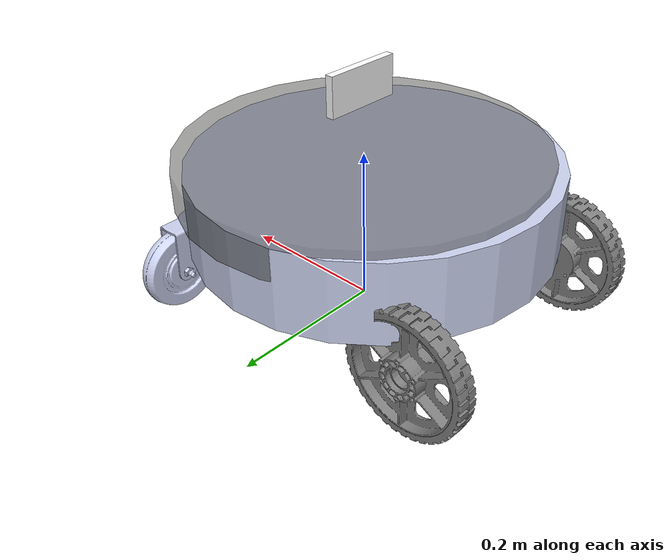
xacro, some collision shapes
<?xml version="1.0"?>
<robot name="hamr" xmlns:xacro="http://www.ros.org/wiki/xacro">

    <xacro:include filename="common_properties.xacro" />
    <xacro:include filename="hamr_sw_v_simplified.xacro" />
    <xacro:include filename="hamr_gazebo.xacro" />
    <xacro:include filename="camera.xacro" />

</robot>

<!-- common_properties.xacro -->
<robot xmlns:xacro="http://www.ros.org/wiki/xacro">

    <material name="black">
        <color rgba="1.0 1.0 1.0 1" /> <!-- r g b alpha -->
    </material>

    <material name="grey">
        <color rgba="0.5 0.5 0.5 1" /> <!-- r g b alpha -->
    </material>

    <material name="white">
        <color rgba="0.0 0.0 0.0 1" /> <!-- r g b alpha -->
    </material>

    <xacro:macro name="box_inertia" params="m x y z o_xyz o_rpy">
        <inertial>
            <mass value="${m}" />
            <origin xyz="${o_xyz}" rpy="${o_rpy}" />
            <inertia ixx="${(m/12) * (y*y + z*z)}" ixy="0" ixz="0"
                     iyy="${(m/12) * (x*x + z*z)}" iyz="0"
                     izz="${(m/12) * (y*y + x*x)}" />
        </inertial>
    </xacro:macro>

    <xacro:macro name="cylinder_inertia" params="m r h o_xyz o_rpy">
        <inertial>
            <mass value="${m}" />
            <origin xyz="${o_xyz}" rpy="${o_rpy}" />
            <inertia ixx="${(m/12) * (3*r*r + h*h)}" ixy="0" ixz="0"
                     iyy="${(m/12) * (3*r*r + h*h)}" iyz="0"
                     izz="${(m/2) * (r*r)}" />
        </inertial>
    </xacro:macro>

    <xacro:macro name="sphere_inertia" params="m r o_xyz o_rpy">
        <inertial>
            <mass value="${m}" />
            <origin xyz="${o_xyz}" rpy="${o_rpy}" />
            <inertia ixx="${(2/5) * m * r*r}" ixy="0" ixz="0"
                     iyy="${(2/5) * m * r*r}" iyz="0"
                     izz="${(2/5) * m * r*r}" />
        </inertial>
    </xacro:macro>

</robot>

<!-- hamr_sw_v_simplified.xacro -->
<robot
  xmlns:xacro="http://www.ros.org/wiki/xacro">

  <xacro:property name="a_dim" value="0.2" />
  <xacro:property name="b_dim" value="0.2" />
  <xacro:property name="a_dim" value="0.2" />

  <link name="base_footprint" />

  <joint name="base_footprint_base_joint" type="fixed">
    <origin
      xyz="-0.284843388017437 -0.203598611982565 0.12064984794"
      rpy="0 0 ${pi/2.0}" />
    <parent
      link="base_footprint" />
    <child
      link="base_link" />
  </joint>

  <link name="base_link">
    <inertial>
      <origin
        xyz="0.198549611345678 -0.271316507443243 0.0289830936800706"
        rpy="0 0 0" />
      <mass
        value="3.89825211968488" />
      <inertia
        ixx="0.0661197424829709"
        ixy="0.000127503435039246"
        ixz="-3.37223289848948E-05"
        iyy="0.0537150913742591"
        iyz="1.76042008590663E-10"
        izz="0.119166120190766" />
    </inertial>
    <visual>
      <origin
        xyz="0 0 0"
        rpy="0 0 0" />
      <geometry>
        <mesh
          filename="package://hamr_description/meshes/base_link.stl" />
      </geometry>
      <material
        name="">
        <color
          rgba="0.792156862745098 0.819607843137255 0.933333333333333 1" />
      </material>
    </visual>
    <collision>
      <origin
        xyz="0.198549611345678 -0.271316507443243 0.0289830936800706"
        rpy="0 0 0" />
      <geometry>
        <cylinder radius="0.225" length="0.1" />
      </geometry>
    </collision>
  </link>

  <link name="right_wheel_link">

    <inertial>
      <origin
        xyz="-0.00186864044901727 2.89919122223314E-07 -1.06873356706116E-07"
        rpy="0 1.5707963267949 0" />
      <mass
        value="${20 * 0.201354791790072}" />
      <inertia
        ixx="0.000633771005763446"
        ixy="6.31284156682718E-10"
        ixz="-2.33742432524019E-10"
        iyy="0.000327993762072381"
        iyz="-1.05208219357446E-10"
        izz="0.000327993534995818" />
    </inertial>
    <visual>
      <origin
        xyz="0 0 0"
        rpy="0 1.5707963267949 0" />
      <geometry>
        <mesh
          filename="package://hamr_description/meshes/right_wheel_link.stl" />
      </geometry>
      <material
        name="">
        <color
          rgba="0.501960784313725 0.501960784313725 0.501960784313725 1" />
      </material>
    </visual>
    <collision>
      <origin
        xyz="0 0 0"
        rpy="0 0 0" />
      <geometry>
        <cylinder radius="0.0762" length="0.0254" />
      </geometry>
    </collision>
  </link>

  <joint name="base_right_wheel_joint" type="continuous">
    <origin
      xyz="0.0536437399956872 -0.0880220830805112 -0.0444496955381151"
      rpy="0 1.5707963267949 0" />
    <parent
      link="base_link" />
    <child
      link="right_wheel_link" />
    <axis
      xyz="0 0 1" />
  </joint>

  <link name="left_wheel_link">
    <inertial>
      <origin
        xyz="-1.54965267659679E-07 -2.70882595285182E-07 -0.0125686288378637"
        rpy="0 ${pi} 0" />
      <mass
        value="${20 * 0.201354790396108}" />
      <inertia
        ixx="0.000327993572579979"
        ixy="1.36473912872677E-10"
        ixz="3.33712968652168E-10"
        iyy="0.000327993723903578"
        iyz="5.84145333206651E-10"
        izz="0.000633771005385494" />
    </inertial>
    <visual>
      <origin
        xyz="0 0 ${0.0254 / 2.0}"
        rpy="0 ${pi} 0" />
      <geometry>
        <mesh
          filename="package://hamr_description/meshes/left_wheel_link.stl" />
      </geometry>
      <material
        name="">
        <color
          rgba="0.501960784313725 0.501960784313725 0.501960784313725 1" />
      </material>
    </visual>
    <collision>
      <origin
        xyz="0 0 0"
        rpy="0 ${pi} 0" />
      <geometry>
        <cylinder radius="0.0762" length="0.0254" />
      </geometry>
    </collision>
  </link>

  <joint name="base_left_wheel_joint" type="continuous">
    <origin
      xyz="${0.365456260020371 - 0.0254 / 2.0} -0.0880218689795108 -0.044451036743372"
      rpy="0 1.5707963267949 0" />
    <parent
      link="base_link" />
    <child
      link="left_wheel_link" />
    <axis
      xyz="0 0 1" />
  </joint>

  <link name="right_caster_link">
    <inertial>
      <origin
        xyz="-0.0150012811060658 -0.0307436227278899 0.000152559555446186"
        rpy="0 0 0" />
      <mass
        value="0.0265082807354226" />
      <inertia
        ixx="1.60132980312546E-05"
        ixy="-4.99863435365951E-06"
        ixz="3.31944351355999E-07"
        iyy="1.47149465447076E-05"
        iyz="6.51321675924592E-07"
        izz="1.89660027877702E-05" />
    </inertial>
    <visual>
      <origin
        xyz="0 0 0"
        rpy="0 0 0" />
      <geometry>
        <mesh
          filename="package://hamr_description/meshes/right_caster_link.stl" />
      </geometry>
      <material
        name="">
        <color
          rgba="0.792156862745098 0.819607843137255 0.933333333333333 1" />
      </material>
    </visual>
    <collision>
      <origin
        xyz="0 -0.0349 0"
        rpy="0 0 0" />
      <geometry>
        <box size="0.0508 0.0698500000000003 0.0222" />
      </geometry>
    </collision>
  </link>

  <joint name="base_right_caster_joint" type="continuous">
    <origin
      xyz="0.0693170406900002 -0.443936368975549 0"
      rpy="1.57079632679489 0 3.14159265358979" />
    <parent
      link="base_link" />
    <child
      link="right_caster_link" />
    <axis
      xyz="0 1 0" />
  </joint>

  <link name="right_caster_wheel_link">

    <inertial>
      <origin
        xyz="0 -1.38777878078145E-17 3.18171516239252E-05"
        rpy="0 0 0" />
      <mass
        value="${1 * 0.16654404953881}" />
      <inertia
        ixx="0.000108847088077107"
        ixy="6.30306408439238E-21"
        ixz="-2.84317671038941E-19"
        iyy="0.000108847088077106"
        iyz="5.26640272588924E-20"
        izz="0.000204453159280929" />
    </inertial>
    <visual>
      <origin
        xyz="0 0 0"
        rpy="0 0 0" />
      <geometry>
        <mesh
          filename="package://hamr_description/meshes/right_caster_wheel_link.stl" />
      </geometry>
      <material
        name="">
        <color
          rgba="0.792156862745098 0.819607843137255 0.933333333333333 1" />
      </material>
    </visual>
    <collision>
      <origin
        xyz="0 0 0"
        rpy="0 0 0" />
      <geometry>
        <cylinder radius="0.0508" length="0.0222" />
      </geometry>
    </collision>
  </link>

  <joint name="right_caster_right_caster_wheel_joint" type="continuous">
    <origin
      xyz="-0.0349249999999998 -0.0698500000000001 0"
      rpy="3.14159265358979 0 1.5707963267949" />
    <parent
      link="right_caster_link" />
    <child
      link="right_caster_wheel_link" />
    <axis
      xyz="0 0 1" />
  </joint>

  <link name="left_caster_link">
    <inertial>
      <origin
        xyz="-0.0150012924946221 -0.0307436318748196 0.000152540697397341"
        rpy="0 0 0" />
      <mass
        value="0.0265082807354226" />
      <inertia
        ixx="1.60132980312558E-05"
        ixy="-4.99863435365951E-06"
        ixz="3.31944351356076E-07"
        iyy="1.47149465447088E-05"
        iyz="6.51321675924747E-07"
        izz="1.89660027877702E-05" />
    </inertial>
    <visual>
      <origin
        xyz="0 0 0"
        rpy="0 0 0" />
      <geometry>
        <mesh
          filename="package://hamr_description/meshes/left_caster_link.stl" />
      </geometry>
      <material
        name="">
        <color
          rgba="0.792156862745098 0.819607843137255 0.933333333333333 1" />
      </material>
    </visual>
    <collision>
      <origin
        xyz="0 -0.0349 0"
        rpy="0 0 0" />
      <geometry>
        <box size="0.0508 0.0698500000000003 0.0222" />
      </geometry>
    </collision>
  </link>

  <joint name="base_left_caster_joint" type="continuous">
    <origin
      xyz="0.33708295931 -0.443936368975549 0"
      rpy="1.5707963267949 0 3.14159265358979" />
    <parent
      link="base_link" />
    <child
      link="left_caster_link" />
    <axis
      xyz="0 1 0" />
  </joint>

  <link name="left_caster_wheel_link">
    <inertial>
      <origin
        xyz="0 0 3.18171516239252E-05"
        rpy="0 0 0" />
      <mass
        value="${1 * 0.16654404953881}" />
      <inertia
        ixx="0.000108847088077107"
        ixy="-9.95970176453651E-21"
        ixz="-4.39740781441153E-20"
        iyy="0.000108847088077107"
        iyz="1.89685544420883E-20"
        izz="0.000204453159280929" />
    </inertial>
    <visual>
      <origin
        xyz="0 0 0"
        rpy="0 0 0" />
      <geometry>
        <mesh
          filename="package://hamr_description/meshes/left_caster_wheel_link.stl" />
      </geometry>
      <material
        name="">
        <color
          rgba="0.792156862745098 0.819607843137255 0.933333333333333 1" />
      </material>
    </visual>
    <collision>
      <origin
        xyz="0 0 0"
        rpy="0 0 0" />
      <geometry>
        <cylinder radius="0.0508" length="0.0222" />
      </geometry>
    </collision>
  </link>

  <joint name="left_caster_left_caster_wheel_joint" type="continuous">
    <origin
      xyz="-0.0349249999999999 -0.0698500000000003 0"
      rpy="3.14159265358979 0 3.14159265358979" />
    <parent
      link="left_caster_link" />
    <child
      link="left_caster_wheel_link" />
    <axis
      xyz="0 0 1" />
  </joint>

  <link name="turret_link">
    <inertial>
      <origin
        xyz="0 0 0.0251720396917002"
        rpy="0 0 0" />
      <mass
        value="1.09707959594957" />
      <inertia
        ixx="0.0121008307090302"
        ixy="-1.18374646022879E-12"
        ixz="4.33557351686518E-11"
        iyy="0.0121008307080653"
        iyz="-5.70978727760025E-12"
        izz="0.0241928906037461" />
    </inertial>
    <visual>
      <origin
        xyz="0 0 0"
        rpy="-3.14159265358979 0 0" />
      <geometry>
        <mesh
          filename="package://hamr_description/meshes/turret_link.stl" />
      </geometry>
      <material
        name="">
        <color
          rgba="0.258823529411765 0.254901960784314 0.243137254901961 0.5" />
      </material>
    </visual>
    <collision>
      <origin
        xyz="0 0 0"
        rpy="-3.14159265358979 0 0" />
      <geometry>
        <cylinder radius="0.225" length="0.05" />
      </geometry>
    </collision>
  </link>

  <joint name="base_turret_joint" type="continuous">
    <origin
      xyz="0.203598611982565 -0.284843388017437 0.0645584712240723"
      rpy="0 0 0" />
    <parent
      link="base_link" />
    <child
      link="turret_link" />
    <axis
      xyz="0 0 1" />

    <limit effort="100" velocity="100" />
    <dynamics friction="0.3" damping="0.3" />
  </joint>

</robot>

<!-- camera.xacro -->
<robot xmlns:xacro="http://www.ros.org/wiki/xacro">

    <xacro:property name="camera_length" value="0.01" />
    <xacro:property name="camera_width" value="0.1" />
    <xacro:property name="camera_height" value="0.05" />

    <link name="camera_link">
        <visual>
            <geometry>
                <box size="${camera_length} ${camera_width} ${camera_height}" />
            </geometry>
            <origin xyz="${camera_length / 2.0} 0 0" rpy="0 0 0" />
            <material name="black" />
        </visual>
        <collision>
            <geometry>
                <box size="${camera_length} ${camera_width} ${camera_height}" />
            </geometry>
        </collision>
        <xacro:box_inertia m="0.1" x="${camera_length}" y="${camera_width}" z="${camera_height}"
                        o_xyz="${camera_length / 2.0} 0 0" o_rpy="0 0 0" />
    </link>

    <link name="camera_link_optical">
    </link>

    <joint name="turret_camera_joint" type="fixed">
        <parent link="turret_link" />
        <child link="camera_link" />
        <origin xyz="0 0 0.1" rpy="0 0 ${-pi / 2.0}"/>
    </joint>

    <!-- generate an optical frame
    http://www.ros.org/reps/rep-0103.html#suffix-frames
    so that ros and opencv can operate on the camera frame correctly
    -->
    <joint name="camera_optical_joint" type="fixed">
        <!-- these values have to be these values otherwise the gazebo camera
            image won't be aligned properly with the frame it is supposedly
            originating from -->
        <parent link="camera_link"/>
        <child link="camera_link_optical"/>
        <origin xyz="0 0 0" rpy="${-pi/2} 0 ${-pi/2}"/>
    </joint>

    <gazebo reference="camera_link">
        <sensor name="camera" type="camera">
            <camera>
                <horizontal_fov>1.3962634</horizontal_fov>
                <image>
                    <width>640</width>
                    <height>480</height>
                    <format>R8G8B8</format>
                </image>
                <clip>
                    <near>0.1</near>
                    <far>15</far>
                </clip>
                <noise>
                    <type>gaussian</type>
                    <mean>0.0</mean>
                    <stddev>0.007</stddev>
                </noise>
                <optical_frame_id>camera_link_optical</optical_frame_id>
                <camera_info_topic>camera/camera_info</camera_info_topic>
            </camera>
            <always_on>1</always_on>
            <update_rate>20</update_rate>
            <visualize>true</visualize>
            <topic>camera/image_raw</topic>
        </sensor>
    </gazebo>

</robot>
